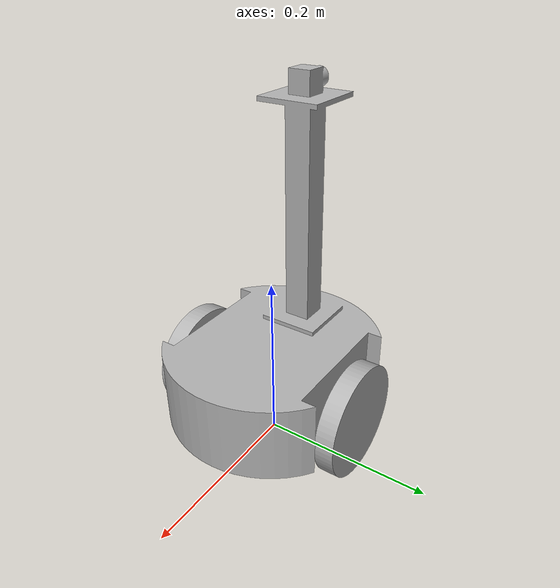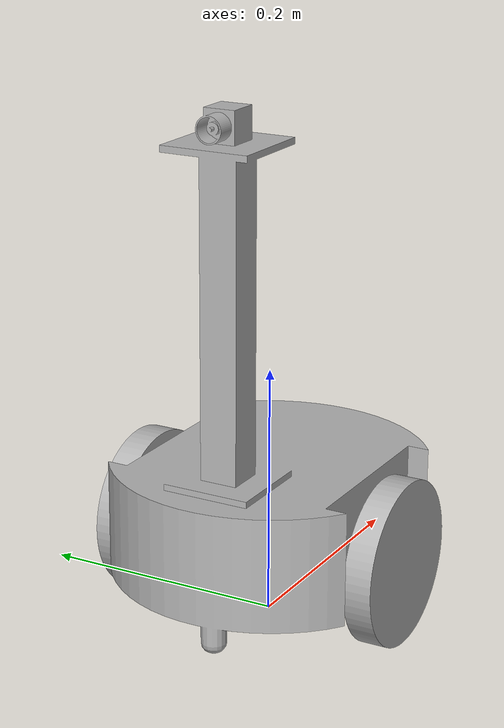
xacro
<?xml version="1.0" ?>
<robot name="mono-slam-rgbd" xmlns:xacro="http://www.ros.org/wiki/xacro">

<xacro:include filename="$(find mono-slam-rgbd_description)/urdf/materials.xacro" />
<xacro:include filename="$(find mono-slam-rgbd_description)/urdf/mono-slam-rgbd.trans" />
<xacro:include filename="$(find mono-slam-rgbd_description)/urdf/mono-slam-rgbd.gazebo" />
<link name="base_link">
  <inertial>
    <origin xyz="-0.004582683546374872 -1.8744785054698612e-17 0.09692937397401277" rpy="0 0 0"/>
    <mass value="4.114485734847727"/>
    <inertia ixx="0.022066" iyy="0.031476" izz="0.027401" ixy="0.0" iyz="-0.0" ixz="0.003076"/>
  </inertial>
  <visual>
    <origin xyz="0 0 0" rpy="0 0 0"/>
    <geometry>
      <mesh filename="package://mono-slam-rgbd_description/meshes/base_link.stl" scale="0.001 0.001 0.001"/>
    </geometry>
    <material name="silver"/>
  </visual>
  <collision>
    <origin xyz="0 0 0" rpy="0 0 0"/>
    <geometry>
      <mesh filename="package://mono-slam-rgbd_description/meshes/base_link.stl" scale="0.001 0.001 0.001"/>
    </geometry>
  </collision>
</link>

<link name="left_wheel_1">
  <inertial>
    <origin xyz="-7.786475390158727e-18 -0.011000047912054611 0.0" rpy="0 0 0"/>
    <mass value="0.27157026455058925"/>
    <inertia ixx="0.000298" iyy="0.000574" izz="0.000298" ixy="-0.0" iyz="-0.0" ixz="0.0"/>
  </inertial>
  <visual>
    <origin xyz="-0.0 0.097191 -0.065" rpy="0 0 0"/>
    <geometry>
      <mesh filename="package://mono-slam-rgbd_description/meshes/left_wheel_1.stl" scale="0.001 0.001 0.001"/>
    </geometry>
    <material name="silver"/>
  </visual>
  <collision>
    <origin xyz="-0.0 0.097191 -0.065" rpy="0 0 0"/>
    <geometry>
      <mesh filename="package://mono-slam-rgbd_description/meshes/left_wheel_1.stl" scale="0.001 0.001 0.001"/>
    </geometry>
  </collision>
</link>

<link name="right_wheel_1">
  <inertial>
    <origin xyz="-7.786475390158727e-18 0.011000047912054597 0.0" rpy="0 0 0"/>
    <mass value="0.27157026455058925"/>
    <inertia ixx="0.000298" iyy="0.000574" izz="0.000298" ixy="0.0" iyz="0.0" ixz="0.0"/>
  </inertial>
  <visual>
    <origin xyz="-0.0 -0.097191 -0.065" rpy="0 0 0"/>
    <geometry>
      <mesh filename="package://mono-slam-rgbd_description/meshes/right_wheel_1.stl" scale="0.001 0.001 0.001"/>
    </geometry>
    <material name="silver"/>
  </visual>
  <collision>
    <origin xyz="-0.0 -0.097191 -0.065" rpy="0 0 0"/>
    <geometry>
      <mesh filename="package://mono-slam-rgbd_description/meshes/right_wheel_1.stl" scale="0.001 0.001 0.001"/>
    </geometry>
  </collision>
</link>

<link name="camera_1">
  <inertial>
    <origin xyz="-0.0018423769067477946 -1.7789767878018978e-14 0.0124999999999999" rpy="0 0 0"/>
    <mass value="0.01834486316442506"/>
    <inertia ixx="2e-06" iyy="2e-06" izz="2e-06" ixy="-0.0" iyz="0.0" ixz="0.0"/>
  </inertial>
  <visual>
    <origin xyz="0.064996 -0.0 -0.39" rpy="0 0 0"/>
    <geometry>
      <mesh filename="package://mono-slam-rgbd_description/meshes/camera_1.stl" scale="0.001 0.001 0.001"/>
    </geometry>
    <material name="silver"/>
  </visual>
  <collision>
    <origin xyz="0.064996 -0.0 -0.39" rpy="0 0 0"/>
    <geometry>
      <mesh filename="package://mono-slam-rgbd_description/meshes/camera_1.stl" scale="0.001 0.001 0.001"/>
    </geometry>
  </collision>
</link>

<joint name="Rev7" type="continuous">
  <origin xyz="0.0 -0.097191 0.065" rpy="0 0 0"/>
  <parent link="base_link"/>
  <child link="left_wheel_1"/>
  <axis xyz="0.0 -1.0 0.0"/>
</joint>

<joint name="Rev8" type="continuous">
  <origin xyz="0.0 0.097191 0.065" rpy="0 0 0"/>
  <parent link="base_link"/>
  <child link="right_wheel_1"/>
  <axis xyz="0.0 1.0 0.0"/>
</joint>

<joint name="Rigid9" type="fixed">
  <origin xyz="-0.064996 0.0 0.39" rpy="0 0 0"/>
  <parent link="base_link"/>
  <child link="camera_1"/>
</joint>

</robot>

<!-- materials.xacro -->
<robot name="mono-slam-rgbd" xmlns:xacro="http://www.ros.org/wiki/xacro" >

<material name="silver">
  <color rgba="0.700 0.700 0.700 1.000"/>
</material>

</robot>

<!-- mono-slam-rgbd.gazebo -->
<robot name="mono-slam-rgbd" xmlns:xacro="http://www.ros.org/wiki/xacro" >

<xacro:property name="body_color" value="Gazebo/Silver" />

<gazebo>
  <plugin name="control" filename="libgazebo_ros_control.so"/>
</gazebo>
<gazebo reference="base_link">
  <material>${body_color}</material>
  <mu1>0.2</mu1>
  <mu2>0.2</mu2>
  <selfCollide>true</selfCollide>
  <gravity>true</gravity>
</gazebo>

<gazebo reference="left_wheel_1">
  <material>${body_color}</material>
  <mu1>0.2</mu1>
  <mu2>0.2</mu2>
  <selfCollide>true</selfCollide>
</gazebo>

<gazebo reference="right_wheel_1">
  <material>${body_color}</material>
  <mu1>0.2</mu1>
  <mu2>0.2</mu2>
  <selfCollide>true</selfCollide>
</gazebo>

<gazebo reference="camera_1">
  <material>${body_color}</material>
  <mu1>0.2</mu1>
  <mu2>0.2</mu2>
  <selfCollide>true</selfCollide>
</gazebo>

</robot>
